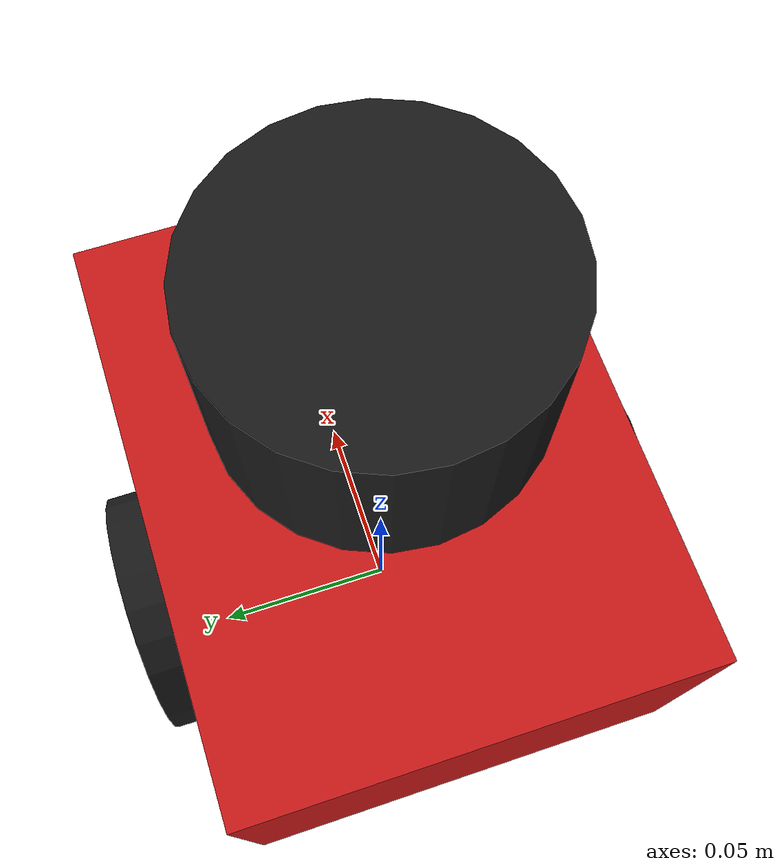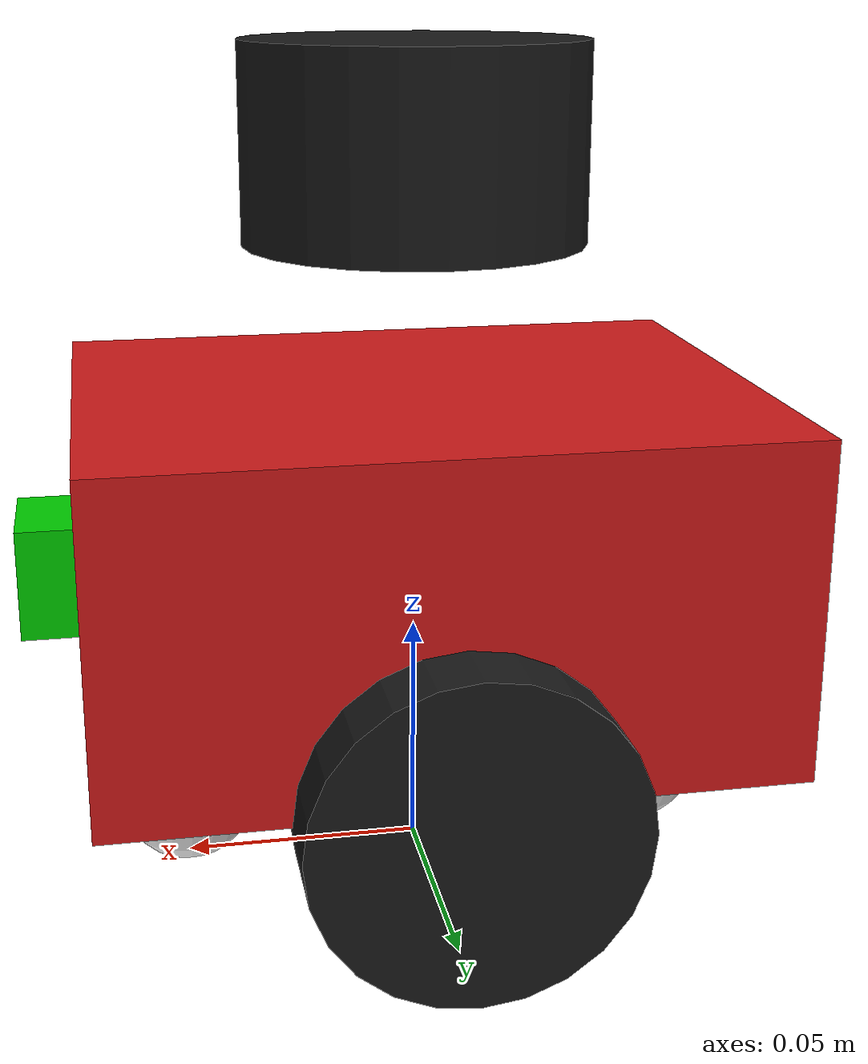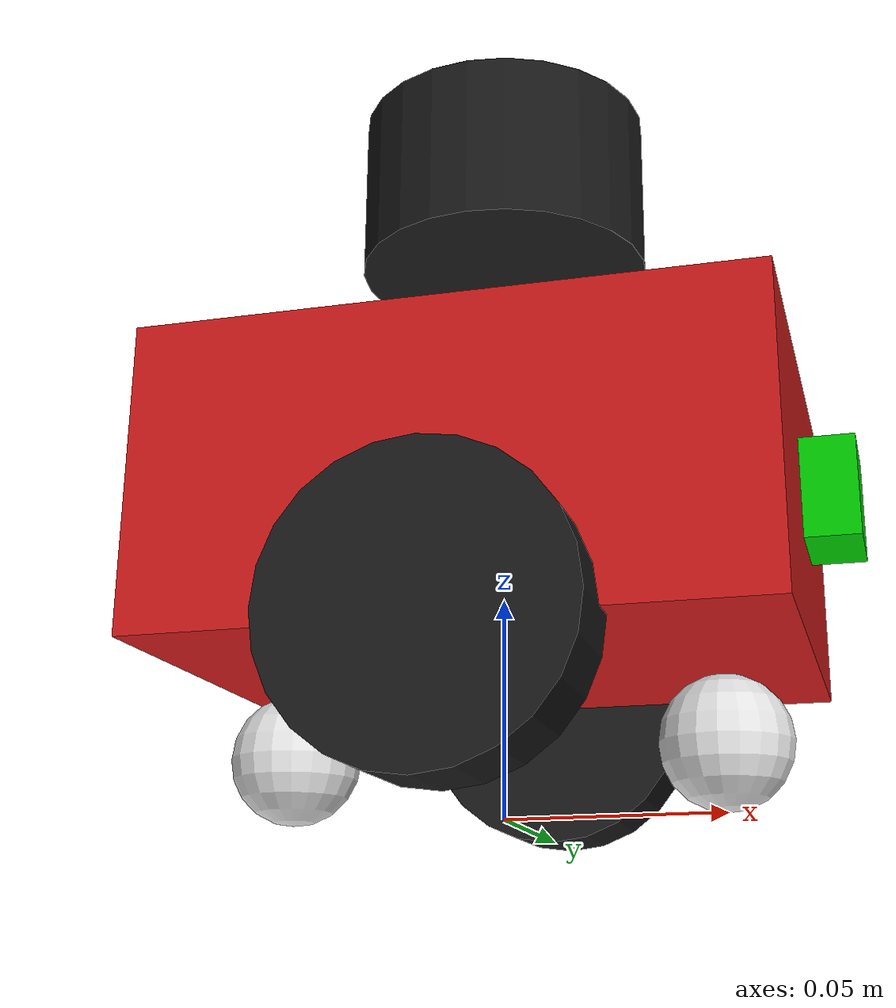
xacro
<?xml version="1.0"?>
<robot name="gopigo3" xmlns:xacro="http://www.ros.org/wiki/xacro">

  <!-- Constants -->
  <xacro:property name="PI" value="3.1415926535897931"/>

  <!-- Robot dimensions (from GoPiGo3 specs) -->
  <xacro:property name="base_width" value="0.110"/>
  <xacro:property name="base_length" value="0.140"/>
  <xacro:property name="base_height" value="0.070"/>

  <xacro:property name="wheel_radius" value="0.03325"/>  <!-- 66.5mm diameter / 2 -->
  <xacro:property name="wheel_width" value="0.022"/>
  <xacro:property name="wheel_separation" value="0.117"/>  <!-- 117mm wheel base -->

  <xacro:property name="caster_radius" value="0.015"/>
  <xacro:property name="caster_offset_x" value="0.050"/>

  <!-- Sensor positions (adjust based on your actual mounting) -->
  <xacro:property name="lidar_height" value="0.12"/>  <!-- Height of LiDAR above base_link -->
  <xacro:property name="imu_offset_x" value="0.0"/>
  <xacro:property name="imu_offset_y" value="0.0"/>
  <xacro:property name="imu_offset_z" value="0.05"/>  <!-- IMU height above base_link -->

  <!-- Colors -->
  <material name="black">
    <color rgba="0.1 0.1 0.1 1"/>
  </material>

  <material name="red">
    <color rgba="0.8 0.1 0.1 1"/>
  </material>

  <material name="white">
    <color rgba="0.9 0.9 0.9 1"/>
  </material>

  <material name="blue">
    <color rgba="0.0 0.0 0.8 1"/>
  </material>

  <material name="green">
    <color rgba="0.0 0.8 0.0 1"/>
  </material>

  <!-- Base footprint (on ground) -->
  <link name="base_footprint"/>

  <joint name="base_joint" type="fixed">
    <parent link="base_footprint"/>
    <child link="base_link"/>
    <origin xyz="0 0 ${wheel_radius}" rpy="0 0 0"/>
  </joint>

  <!-- Base link (robot body) -->
  <link name="base_link">
    <visual>
      <geometry>
        <box size="${base_length} ${base_width} ${base_height}"/>
      </geometry>
      <material name="red"/>
      <origin xyz="0 0 ${base_height/2}" rpy="0 0 0"/>
    </visual>

    <collision>
      <geometry>
        <box size="${base_length} ${base_width} ${base_height}"/>
      </geometry>
      <origin xyz="0 0 ${base_height/2}" rpy="0 0 0"/>
    </collision>

    <inertial>
      <mass value="1.0"/>
      <origin xyz="0 0 ${base_height/2}" rpy="0 0 0"/>
      <inertia ixx="0.001" ixy="0.0" ixz="0.0"
               iyy="0.001" iyz="0.0"
               izz="0.001"/>
    </inertial>
  </link>

  <!-- Left Wheel -->
  <link name="left_wheel">
    <visual>
      <geometry>
        <cylinder radius="${wheel_radius}" length="${wheel_width}"/>
      </geometry>
      <material name="black"/>
      <origin xyz="0 0 0" rpy="${PI/2} 0 0"/>
    </visual>

    <collision>
      <geometry>
        <cylinder radius="${wheel_radius}" length="${wheel_width}"/>
      </geometry>
      <origin xyz="0 0 0" rpy="${PI/2} 0 0"/>
    </collision>

    <inertial>
      <mass value="0.05"/>
      <origin xyz="0 0 0" rpy="${PI/2} 0 0"/>
      <inertia ixx="0.0001" ixy="0.0" ixz="0.0"
               iyy="0.0001" iyz="0.0"
               izz="0.0001"/>
    </inertial>
  </link>

  <joint name="left_wheel_joint" type="continuous">
    <parent link="base_link"/>
    <child link="left_wheel"/>
    <origin xyz="0 ${wheel_separation/2} 0" rpy="0 0 0"/>
    <axis xyz="0 1 0"/>
  </joint>

  <!-- Right Wheel -->
  <link name="right_wheel">
    <visual>
      <geometry>
        <cylinder radius="${wheel_radius}" length="${wheel_width}"/>
      </geometry>
      <material name="black"/>
      <origin xyz="0 0 0" rpy="${PI/2} 0 0"/>
    </visual>

    <collision>
      <geometry>
        <cylinder radius="${wheel_radius}" length="${wheel_width}"/>
      </geometry>
      <origin xyz="0 0 0" rpy="${PI/2} 0 0"/>
    </collision>

    <inertial>
      <mass value="0.05"/>
      <origin xyz="0 0 0" rpy="${PI/2} 0 0"/>
      <inertia ixx="0.0001" ixy="0.0" ixz="0.0"
               iyy="0.0001" iyz="0.0"
               izz="0.0001"/>
    </inertial>
  </link>

  <joint name="right_wheel_joint" type="continuous">
    <parent link="base_link"/>
    <child link="right_wheel"/>
    <origin xyz="0 ${-wheel_separation/2} 0" rpy="0 0 0"/>
    <axis xyz="0 1 0"/>
  </joint>

  <!-- Front Caster Wheel -->
  <link name="front_caster">
    <visual>
      <geometry>
        <sphere radius="${caster_radius}"/>
      </geometry>
      <material name="white"/>
      <origin xyz="0 0 0" rpy="0 0 0"/>
    </visual>

    <collision>
      <geometry>
        <sphere radius="${caster_radius}"/>
      </geometry>
      <origin xyz="0 0 0" rpy="0 0 0"/>
    </collision>

    <inertial>
      <mass value="0.01"/>
      <origin xyz="0 0 0" rpy="0 0 0"/>
      <inertia ixx="0.00001" ixy="0.0" ixz="0.0"
               iyy="0.00001" iyz="0.0"
               izz="0.00001"/>
    </inertial>
  </link>

  <joint name="front_caster_joint" type="fixed">
    <parent link="base_link"/>
    <child link="front_caster"/>
    <origin xyz="${caster_offset_x} 0 ${-wheel_radius + caster_radius}" rpy="0 0 0"/>
  </joint>

  <!-- Back Caster Wheel -->
  <link name="back_caster">
    <visual>
      <geometry>
        <sphere radius="${caster_radius}"/>
      </geometry>
      <material name="white"/>
      <origin xyz="0 0 0" rpy="0 0 0"/>
    </visual>

    <collision>
      <geometry>
        <sphere radius="${caster_radius}"/>
      </geometry>
      <origin xyz="0 0 0" rpy="0 0 0"/>
    </collision>

    <inertial>
      <mass value="0.01"/>
      <origin xyz="0 0 0" rpy="0 0 0"/>
      <inertia ixx="0.00001" ixy="0.0" ixz="0.0"
               iyy="0.00001" iyz="0.0"
               izz="0.00001"/>
    </inertial>
  </link>

  <joint name="back_caster_joint" type="fixed">
    <parent link="base_link"/>
    <child link="back_caster"/>
    <origin xyz="${-caster_offset_x} 0 ${-wheel_radius + caster_radius}" rpy="0 0 0"/>
  </joint>

  <!-- IMU Sensor (BNO055) -->
  <link name="imu_link">
    <visual>
      <geometry>
        <box size="0.02 0.02 0.005"/>
      </geometry>
      <material name="blue"/>
      <origin xyz="0 0 0" rpy="0 0 0"/>
    </visual>

    <inertial>
      <mass value="0.001"/>
      <origin xyz="0 0 0" rpy="0 0 0"/>
      <inertia ixx="0.00001" ixy="0.0" ixz="0.0"
               iyy="0.00001" iyz="0.0"
               izz="0.00001"/>
    </inertial>
  </link>

  <joint name="imu_joint" type="fixed">
    <parent link="base_link"/>
    <child link="imu_link"/>
    <!-- Adjust this based on your actual IMU mounting position -->
    <!-- BNO055 on GoPiGo3 is typically mounted on top of the robot -->
    <origin xyz="${imu_offset_x} ${imu_offset_y} ${imu_offset_z}" rpy="0 0 0"/>
  </joint>

  <!-- LiDAR Sensor (RPLidar A1) -->
  <link name="laser_frame">
    <visual>
      <geometry>
        <cylinder radius="0.035" length="0.04"/>
      </geometry>
      <material name="black"/>
      <origin xyz="0 0 0" rpy="0 0 0"/>
    </visual>

    <collision>
      <geometry>
        <cylinder radius="0.035" length="0.04"/>
      </geometry>
      <origin xyz="0 0 0" rpy="0 0 0"/>
    </collision>

    <inertial>
      <mass value="0.1"/>
      <origin xyz="0 0 0" rpy="0 0 0"/>
      <inertia ixx="0.0001" ixy="0.0" ixz="0.0"
               iyy="0.0001" iyz="0.0"
               izz="0.0001"/>
    </inertial>
  </link>

  <joint name="laser_joint" type="fixed">
    <parent link="base_link"/>
    <child link="laser_frame"/>
    <!-- RPLidar A1 mounted on top of robot -->
    <!-- rpy: roll=0, pitch=0, yaw=0 - corrected orientation -->
    <origin xyz="0 0 ${lidar_height}" rpy="0 0 0"/>
  </joint>

  <!-- Raspberry Pi Camera (optional) -->
  <link name="camera_link">
    <visual>
      <geometry>
        <box size="0.025 0.023 0.023"/>
      </geometry>
      <material name="green"/>
      <origin xyz="0 0 0" rpy="0 0 0"/>
    </visual>

    <inertial>
      <mass value="0.01"/>
      <origin xyz="0 0 0" rpy="0 0 0"/>
      <inertia ixx="0.00001" ixy="0.0" ixz="0.0"
               iyy="0.00001" iyz="0.0"
               izz="0.00001"/>
    </inertial>
  </link>

  <joint name="camera_joint" type="fixed">
    <parent link="base_link"/>
    <child link="camera_link"/>
    <!-- Camera mounted at front of robot, looking forward -->
    <origin xyz="${base_length/2} 0 ${base_height/2}" rpy="0 0 0"/>
  </joint>

  <link name="camera_optical_frame"/>

  <joint name="camera_optical_joint" type="fixed">
    <parent link="camera_link"/>
    <child link="camera_optical_frame"/>
    <!-- Transform from camera_link to optical frame (ROS convention) -->
    <origin xyz="0 0 0" rpy="${-PI/2} 0 ${-PI/2}"/>
  </joint>

</robot>
